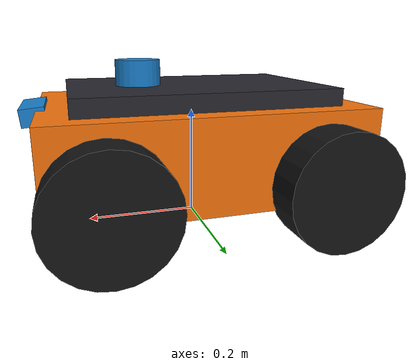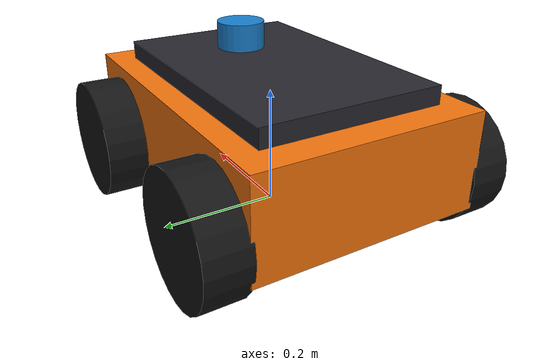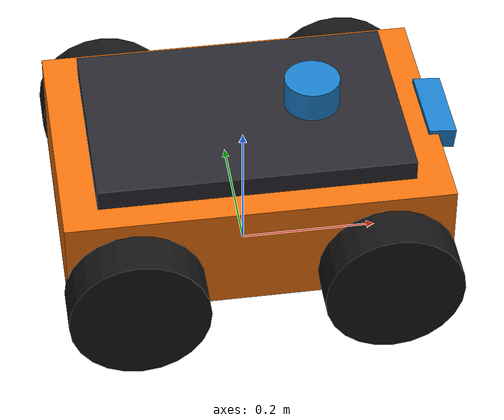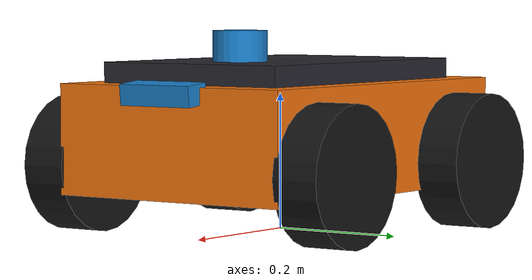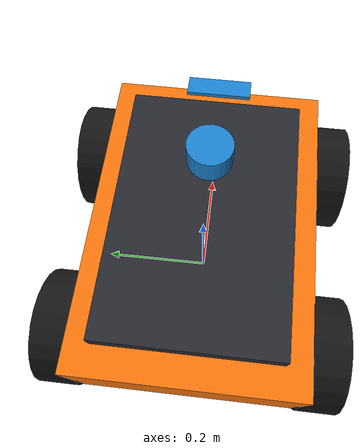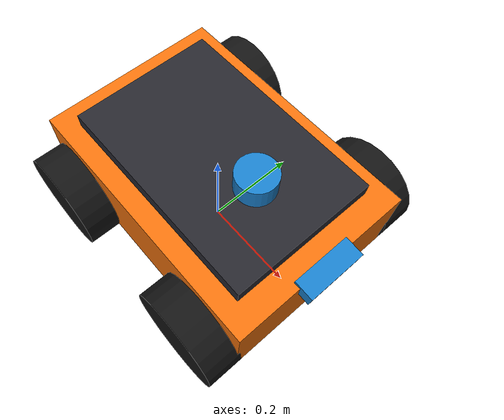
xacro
<?xml version="1.0"?>
<robot name="sih_ugv" xmlns:xacro="http://www.ros.org/wiki/xacro">

  <!-- Arguments -->
  <xacro:arg name="sim" default="true" />

  <!-- Colors and Materials -->
  <material name="chassis_dark">
    <color rgba="0.15 0.15 0.18 1.0" />
  </material>
  <material name="sih_orange">
    <color rgba="0.95 0.45 0.05 1.0" />
  </material>
  <material name="wheel_rubber">
    <color rgba="0.08 0.08 0.08 1.0" />
  </material>
  <material name="sensor_blue">
    <color rgba="0.1 0.5 0.8 1.0" />
  </material>

  <!-- Base Footprint -->
  <link name="base_footprint" />

  <!-- Base Link (UGV Chassis) -->
  <link name="base_link">
    <inertial>
      <origin xyz="0.0 0.0 0.08" rpy="0 0 0" />
      <mass value="12.0" />
      <inertia ixx="0.15" ixy="0.0" ixz="0.0" iyy="0.25" iyz="0.0" izz="0.30" />
    </inertial>
    <visual>
      <origin xyz="0.0 0.0 0.08" rpy="0 0 0" />
      <geometry>
        <box size="0.55 0.38 0.16" />
      </geometry>
      <material name="sih_orange" />
    </visual>
    <visual>
      <origin xyz="0.0 0.0 0.17" rpy="0 0 0" />
      <geometry>
        <box size="0.45 0.30 0.04" />
      </geometry>
      <material name="chassis_dark" />
    </visual>
    <collision>
      <origin xyz="0.0 0.0 0.08" rpy="0 0 0" />
      <geometry>
        <box size="0.55 0.38 0.16" />
      </geometry>
    </collision>
  </link>

  <joint name="base_footprint_to_base_link" type="fixed">
    <parent link="base_footprint" />
    <child link="base_link" />
    <origin xyz="0 0 0.06" rpy="0 0 0" />
  </joint>

  <!-- Wheel Macro -->
  <xacro:macro name="ugv_wheel" params="prefix x_offset y_offset">
    <link name="${prefix}_wheel_link">
      <inertial>
        <origin xyz="0 0 0" rpy="0 0 0" />
        <mass value="2.0" />
        <inertia ixx="0.008" ixy="0.0" ixz="0.0" iyy="0.008" iyz="0.0" izz="0.012" />
      </inertial>
      <visual>
        <origin xyz="0 0 0" rpy="1.570796 0 0" />
        <geometry>
          <cylinder radius="0.10" length="0.07" />
        </geometry>
        <material name="wheel_rubber" />
      </visual>
      <collision>
        <origin xyz="0 0 0" rpy="1.570796 0 0" />
        <geometry>
          <cylinder radius="0.10" length="0.07" />
        </geometry>
      </collision>
    </link>

    <joint name="${prefix}_wheel_joint" type="continuous">
      <parent link="base_link" />
      <child link="${prefix}_wheel_link" />
      <origin xyz="${x_offset} ${y_offset} 0.04" rpy="0 0 0" />
      <axis xyz="0 1 0" />
    </joint>

    <gazebo reference="${prefix}_wheel_link">
      <mu1>1.2</mu1>
      <mu2>1.2</mu2>
      <kp>1000000.0</kp>
      <kd>100.0</kd>
      <material>Gazebo/DarkGrey</material>
    </gazebo>
  </xacro:macro>

  <!-- 4 Wheels -->
  <xacro:ugv_wheel prefix="front_left"  x_offset="0.18"  y_offset="0.22" />
  <xacro:ugv_wheel prefix="rear_left"   x_offset="-0.18" y_offset="0.22" />
  <xacro:ugv_wheel prefix="front_right" x_offset="0.18"  y_offset="-0.22" />
  <xacro:ugv_wheel prefix="rear_right"  x_offset="-0.18" y_offset="-0.22" />

  <!-- Include Sensors & Gazebo Control -->
  <xacro:include filename="$(find sih_ugv_description)/urdf/sensors.xacro" />
  <xacro:include filename="$(find sih_ugv_description)/urdf/gazebo_control.xacro" />

</robot>

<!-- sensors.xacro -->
<robot name="sih_ugv" xmlns:xacro="http://www.ros.org/wiki/xacro">

  <!-- ==================== LiDAR Sensor ==================== -->
  <link name="lidar_frame">
    <inertial>
      <origin xyz="0 0 0" rpy="0 0 0" />
      <mass value="0.2" />
      <inertia ixx="0.0001" ixy="0.0" ixz="0.0" iyy="0.0001" iyz="0.0" izz="0.0001" />
    </inertial>
    <visual>
      <origin xyz="0 0 0" rpy="0 0 0" />
      <geometry>
        <cylinder radius="0.04" length="0.05" />
      </geometry>
      <material name="sensor_blue" />
    </visual>
    <collision>
      <origin xyz="0 0 0" rpy="0 0 0" />
      <geometry>
        <cylinder radius="0.04" length="0.05" />
      </geometry>
    </collision>
  </link>

  <joint name="lidar_joint" type="fixed">
    <parent link="base_link" />
    <child link="lidar_frame" />
    <origin xyz="0.10 0 0.21" rpy="0 0 0" />
  </joint>

  <gazebo reference="lidar_frame">
    <sensor name="lidar" type="gpu_lidar">
      <pose>0 0 0 0 0 0</pose>
      <always_on>true</always_on>
      <visualize>true</visualize>
      <update_rate>15</update_rate>
      <topic>/scan</topic>
      <gz_frame_id>lidar_frame</gz_frame_id>
      <lidar>
        <scan>
          <horizontal>
            <samples>640</samples>
            <resolution>1</resolution>
            <min_angle>-3.14159265</min_angle>
            <max_angle>3.14159265</max_angle>
          </horizontal>
        </scan>
        <range>
          <min>0.15</min>
          <max>25.0</max>
          <resolution>0.01</resolution>
        </range>
        <noise>
          <type>gaussian</type>
          <mean>0.0</mean>
          <stddev>0.01</stddev>
        </noise>
      </lidar>
    </sensor>
  </gazebo>

  <!-- ==================== RGB-D Stereo Depth Camera ==================== -->
  <link name="camera_link">
    <inertial>
      <origin xyz="0 0 0" rpy="0 0 0" />
      <mass value="0.15" />
      <inertia ixx="0.0001" ixy="0.0" ixz="0.0" iyy="0.0001" iyz="0.0" izz="0.0001" />
    </inertial>
    <visual>
      <origin xyz="0 0 0" rpy="0 0 0" />
      <geometry>
        <box size="0.04 0.12 0.03" />
      </geometry>
      <material name="sensor_blue" />
    </visual>
    <collision>
      <origin xyz="0 0 0" rpy="0 0 0" />
      <geometry>
        <box size="0.04 0.12 0.03" />
      </geometry>
    </collision>
  </link>

  <joint name="camera_joint" type="fixed">
    <parent link="base_link" />
    <child link="camera_link" />
    <origin xyz="0.28 0 0.15" rpy="0 0.10 0" /> <!-- Slight downward pitch for ground path detection -->
  </joint>

  <link name="camera_optical_frame" />

  <joint name="camera_optical_joint" type="fixed">
    <parent link="camera_link" />
    <child link="camera_optical_frame" />
    <origin xyz="0 0 0" rpy="-1.570796 0 -1.570796" />
  </joint>

  <gazebo reference="camera_link">
    <sensor name="camera" type="rgbd_camera">
      <pose>0 0 0 0 0 0</pose>
      <always_on>true</always_on>
      <visualize>true</visualize>
      <update_rate>20</update_rate>
      <topic>/camera</topic>
      <gz_frame_id>camera_optical_frame</gz_frame_id>
      <camera>
        <horizontal_fov>1.3962634</horizontal_fov> <!-- 80 degrees -->
        <image>
          <width>640</width>
          <height>480</height>
          <format>R8G8B8</format>
        </image>
        <clip>
          <near>0.1</near>
          <far>20.0</far>
        </clip>
        <depth_camera>
          <clip>
            <near>0.1</near>
            <far>20.0</far>
          </clip>
        </depth_camera>
        <noise>
          <type>gaussian</type>
          <mean>0.0</mean>
          <stddev>0.005</stddev>
        </noise>
      </camera>
    </sensor>
  </gazebo>

  <!-- ==================== IMU Sensor ==================== -->
  <link name="imu_link" />

  <joint name="imu_joint" type="fixed">
    <parent link="base_link" />
    <child link="imu_link" />
    <origin xyz="0 0 0.08" rpy="0 0 0" />
  </joint>

  <gazebo reference="imu_link">
    <sensor name="imu_sensor" type="imu">
      <always_on>true</always_on>
      <update_rate>50</update_rate>
      <visualize>false</visualize>
      <topic>/imu/data</topic>
      <gz_frame_id>imu_link</gz_frame_id>
      <imu>
        <angular_velocity>
          <x>
            <noise type="gaussian">
              <mean>0.0</mean>
              <stddev>2e-4</stddev>
            </noise>
          </x>
          <y>
            <noise type="gaussian">
              <mean>0.0</mean>
              <stddev>2e-4</stddev>
            </noise>
          </y>
          <z>
            <noise type="gaussian">
              <mean>0.0</mean>
              <stddev>2e-4</stddev>
            </noise>
          </z>
        </angular_velocity>
        <linear_acceleration>
          <x>
            <noise type="gaussian">
              <mean>0.0</mean>
              <stddev>1.7e-2</stddev>
            </noise>
          </x>
          <y>
            <noise type="gaussian">
              <mean>0.0</mean>
              <stddev>1.7e-2</stddev>
            </noise>
          </y>
          <z>
            <noise type="gaussian">
              <mean>0.0</mean>
              <stddev>1.7e-2</stddev>
            </noise>
          </z>
        </linear_acceleration>
      </imu>
    </sensor>
  </gazebo>

</robot>
